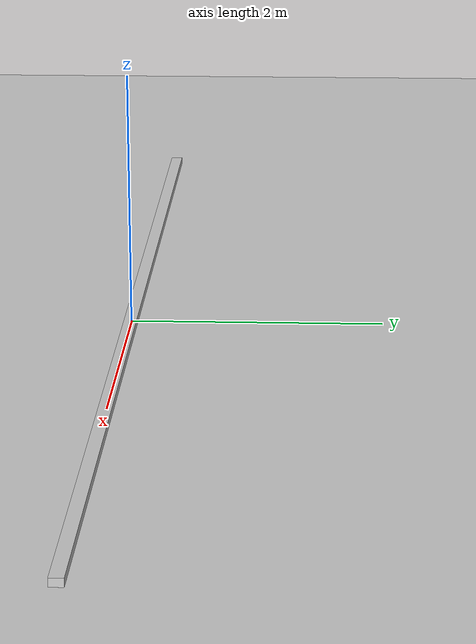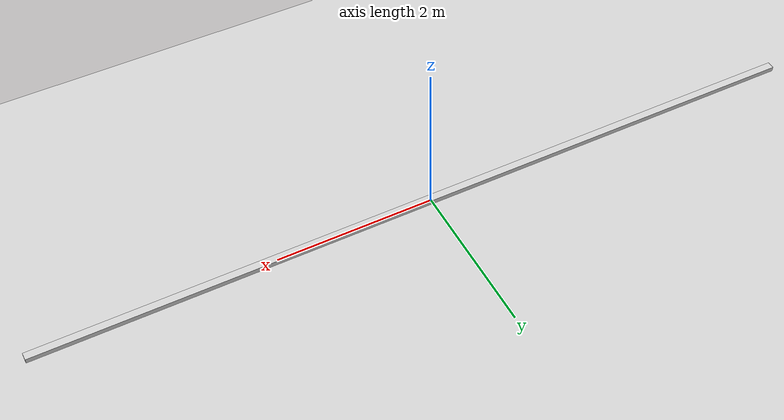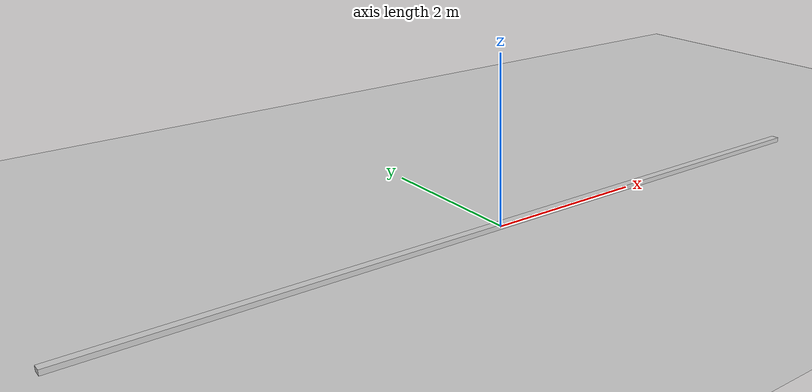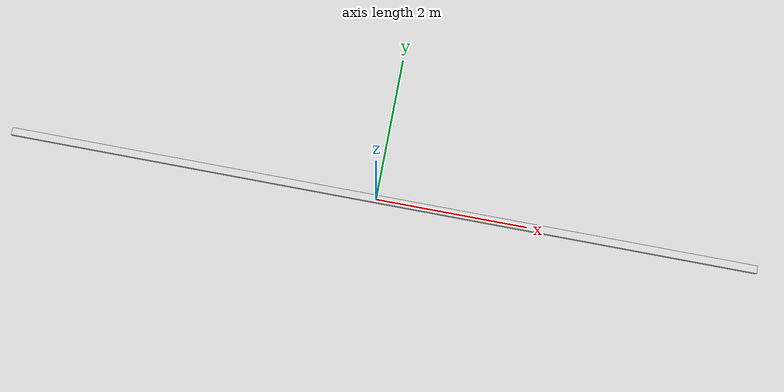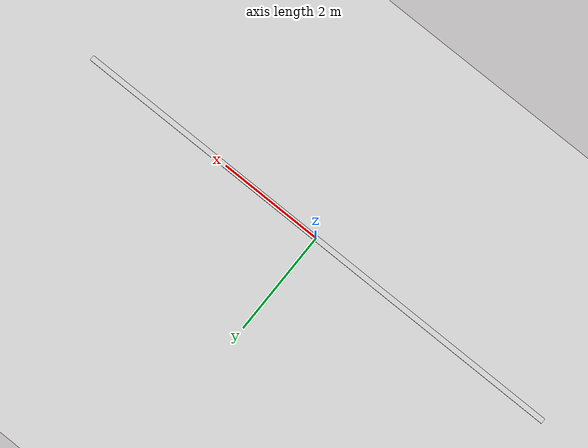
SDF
<?xml version="1.0"?>
<sdf version="1.6">
  <world name="default">
    <plugin name="gazebo_ros_api_plugin" filename="libgazebo_ros_api_plugin.so"/>

    <plugin name="gazebo_ros_state" filename="libgazebo_ros_state.so">
      <ros>
        <namespace>/gazebo</namespace>
      </ros>
    </plugin>

    <gazebo>
        <plugin name="gazebo_ros_joint_state_publisher"
            filename="libgazebo_ros_joint_state_publisher.so">
            <update_rate>20</update_rate>
            <joint_name>slider_joint</joint_name>
            <joint_name>arm_joint</joint_name>
        </plugin>
    </gazebo>

    <include>
      <uri>model://ground_plane</uri>
    </include>

    <include>
      <uri>model://sun</uri>
    </include>

    <scene>
      <shadows>true</shadows>
    </scene>

    <physics type="ode">
      <real_time_update_rate>20</real_time_update_rate>
      <max_step_size>0.005</max_step_size>
    </physics>

    <include>
      <uri>model://rail_system</uri>
      <pose>0 0 0 0 0 0</pose>
    </include>

  </world>
</sdf>

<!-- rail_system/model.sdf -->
<sdf version="1.6">
  <model name="rail_system">
    <static>true</static>
    <link name="rail">
      <visual name="rail_visual">
        <geometry>
          <box>
            <size>10 0.1 0.1</size>
          </box>
        </geometry>
        <material>
          <ambient>0.7 0.7 0.7 1</ambient>
          <diffuse>0.8 0.8 0.8 1</diffuse>
        </material>
      </visual>
      <collision name="rail_collision">
        <geometry>
          <box>
            <size>10 0.1 0.1</size>
          </box>
        </geometry>
      </collision>
    </link>
  </model>
</sdf>
